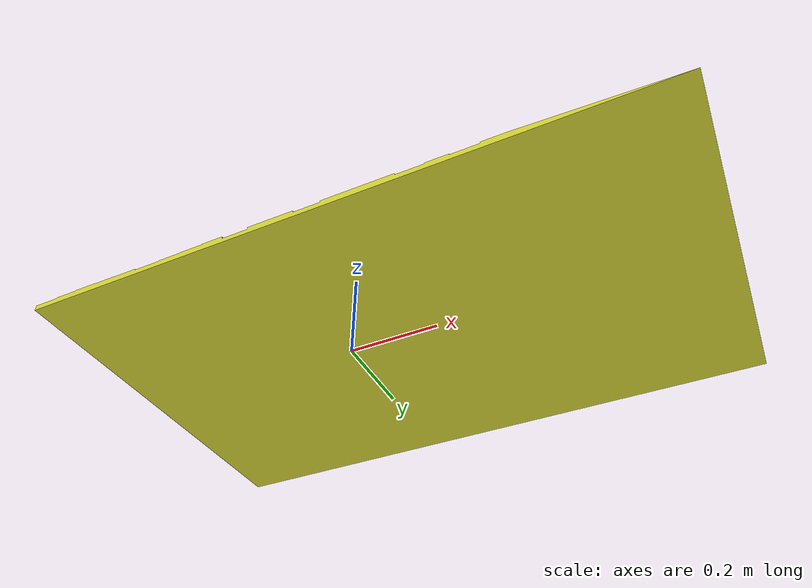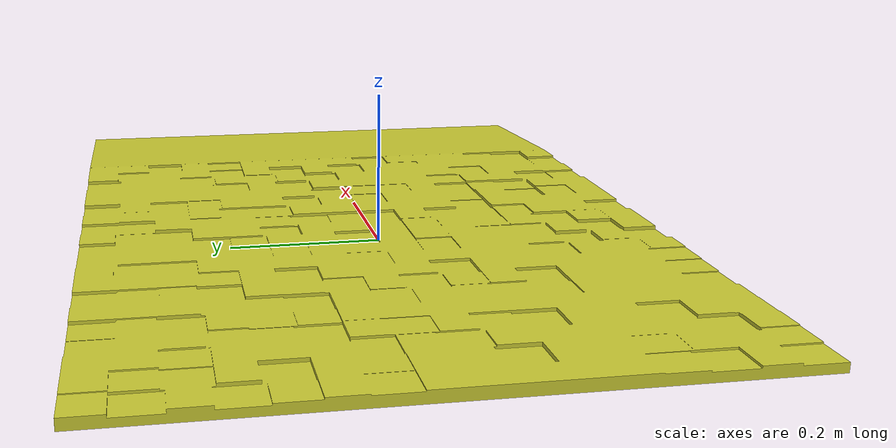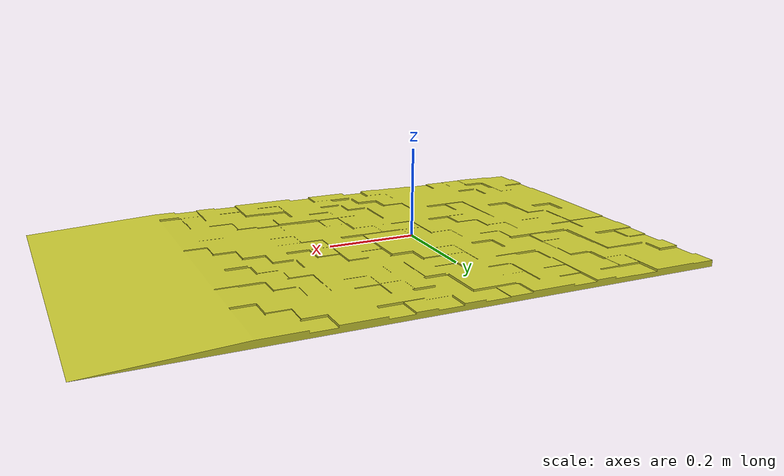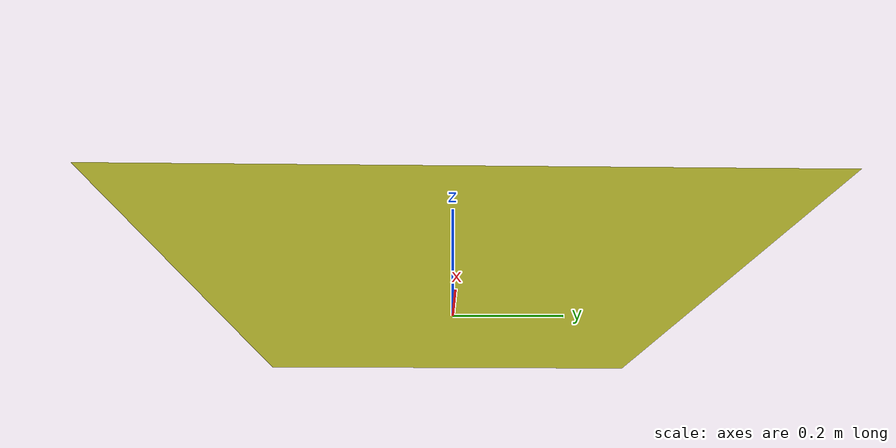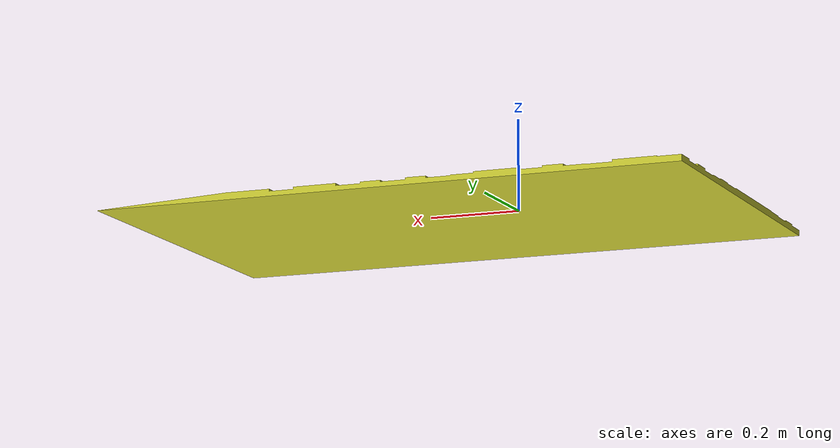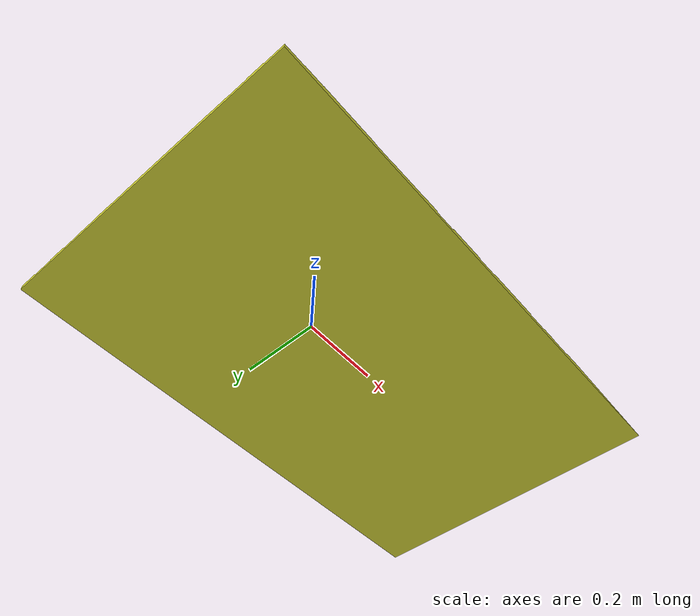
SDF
<?xml version="1.0" ?>
<sdf version="1.8">
  <model name="irregular_floor">
    <static>true</static>
    <link name="floor">
      <visual name="visual">
        <geometry>
            <mesh>
              <uri>meshes/IrregularFloor.stl</uri>
              <scale>1e-3 1e-3 1e-3</scale>
            </mesh>
        </geometry>
        <!-- Opcional: aplicar material -->
        <material>
          <diffuse>0.8 0.8 0.2 1.0</diffuse>
        </material>
      </visual>

      <collision name="collision">
        <geometry>
            <mesh>
              <uri>meshes/IrregularFloor.stl</uri>
              <scale>1e-3 1e-3 1e-3</scale>
            </mesh>
        </geometry>
      </collision>

      <inertial>
        <mass>10.0</mass>
        <inertia>
          <ixx>0.1</ixx>
          <ixy>0.0</ixy>
          <ixz>0.0</ixz>
          <iyy>0.1</iyy>
          <iyz>0.0</iyz>
          <izz>0.1</izz>
        </inertia>
      </inertial>
    </link>

    <!-- Más links (brazos, ruedas, etc.) -->

  </model>
</sdf>
